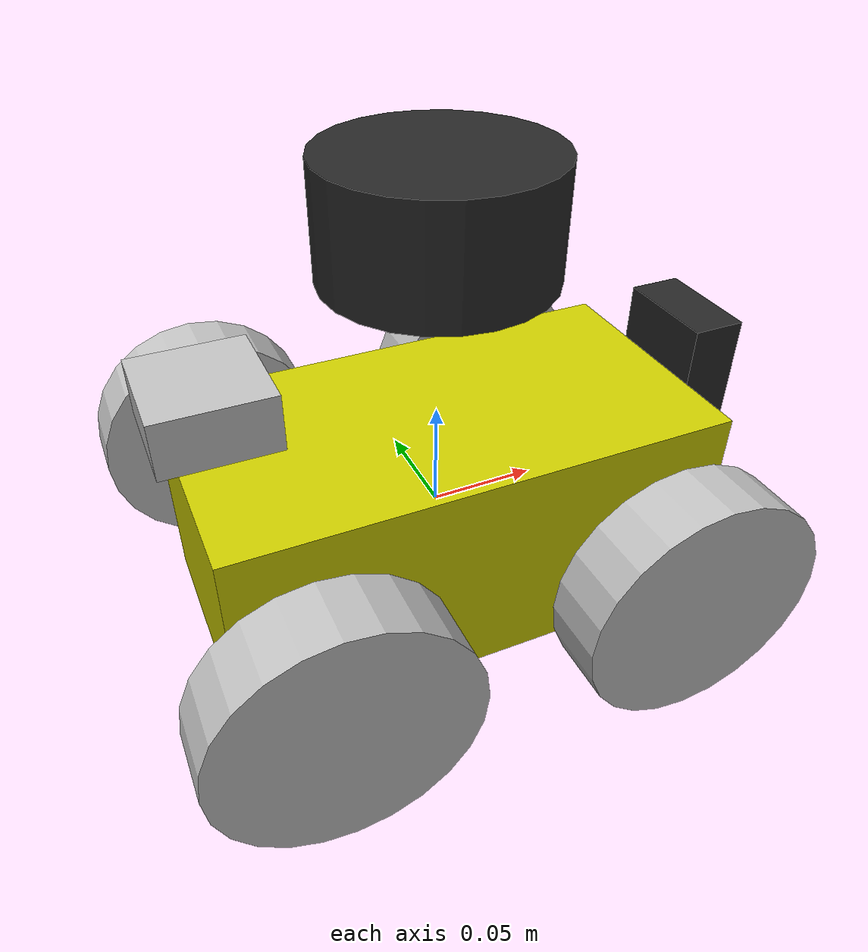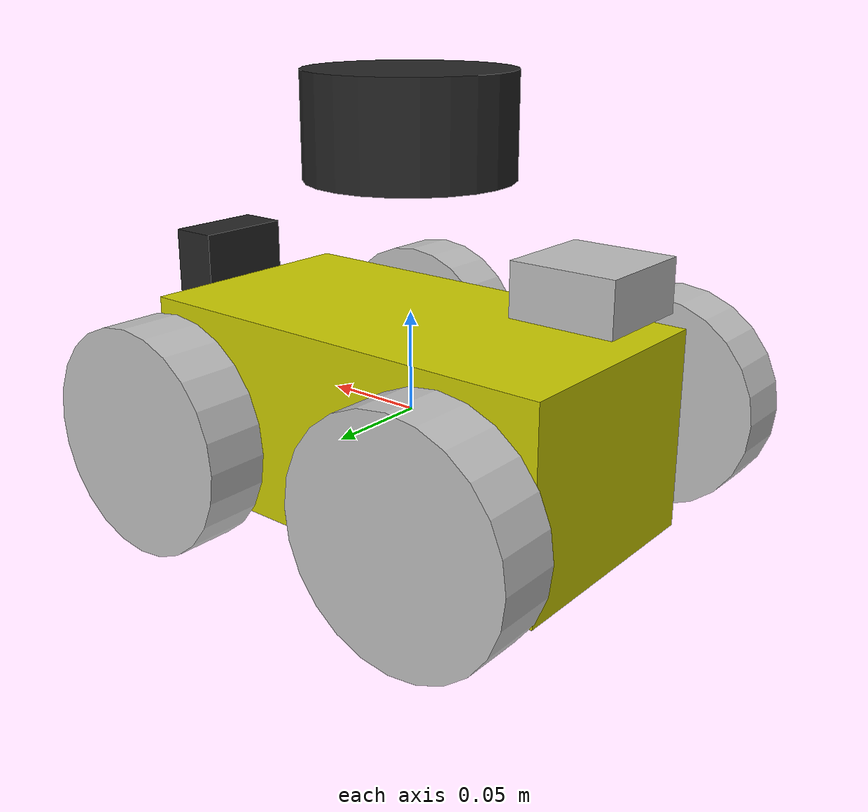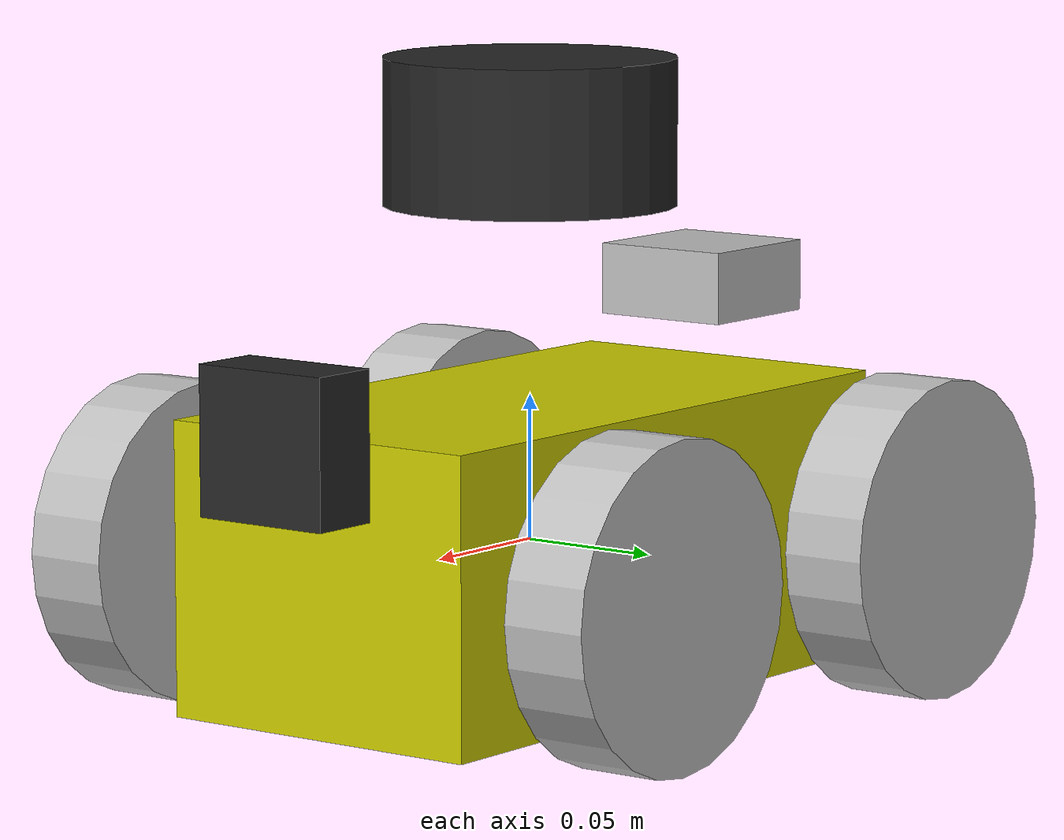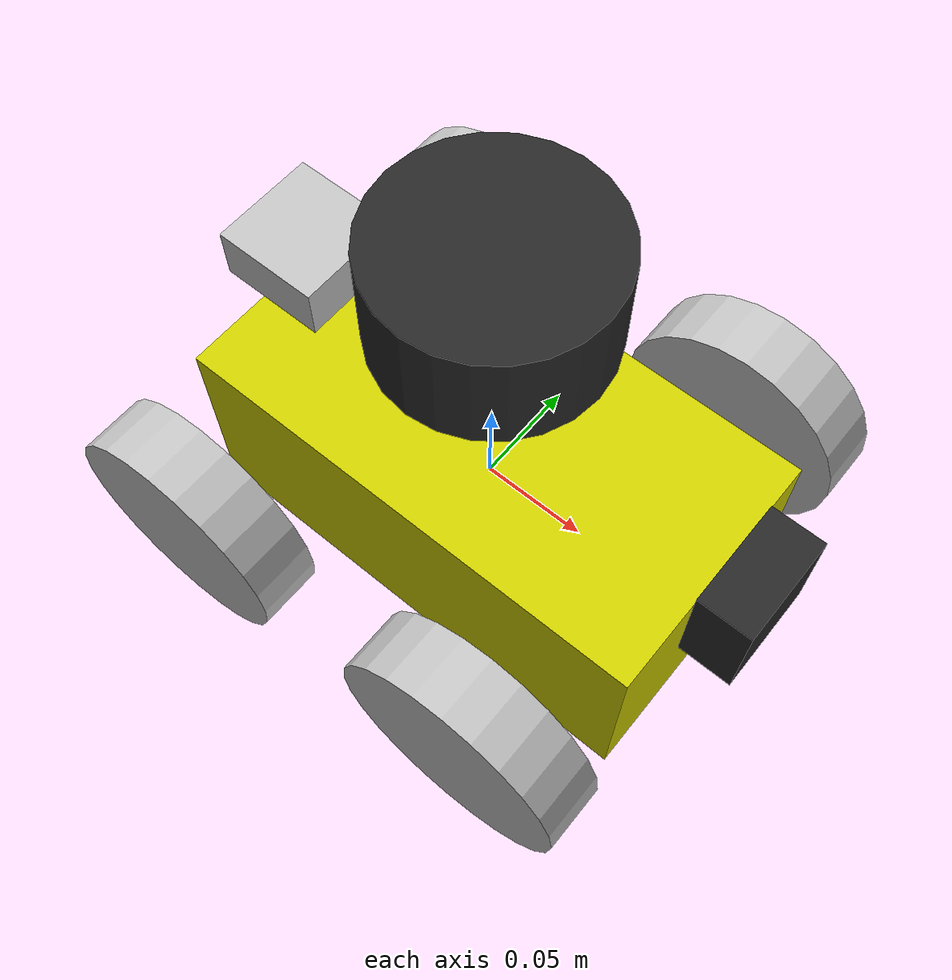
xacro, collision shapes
<?xml version="1.0" encoding="utf-8"?>
<robot name="rubot">

  <!-- Materials (RViz / URDF visuals) -->
  <material name="yellow">
    <color rgba="0.8 0.8 0.0 1.0"/>
  </material>
  <material name="black">
    <color rgba="0.15 0.15 0.15 1.0"/>
  </material>
  <material name="dark_grey">
    <color rgba="0.2 0.2 0.2 1.0"/>
  </material>
  <material name="light_grey">
    <color rgba="0.75 0.75 0.75 1.0"/>
  </material>

  <!-- base_footprint reference frame (no inertia needed) -->
  <link name="base_footprint"/>

  <!-- base_link -->
  <joint name="base_link_joint" type="fixed">
    <origin rpy="0 0 0" xyz="0 0 0"/>
    <parent link="base_footprint"/>
    <child link="base_link"/>
  </joint>

  <link name="base_link">
    <visual>
      <origin rpy="0 0 0" xyz="0 0 0"/>
      <geometry>
        <mesh filename="package://my_robot_description/meshes/rubot/base_link.stl"
              scale="0.001 0.001 0.001"/>
      </geometry>
      <material name="yellow"/>
    </visual>

    <collision>
      <origin xyz="0 0 0"/>
      <geometry>
        <box size="0.23 0.12 0.1"/>
      </geometry>
    </collision>

    <inertial>
      <origin rpy="0 0 0" xyz="0 0 0"/>
      <mass value="5"/>
      <inertia ixx="0.0104" ixy="0" ixz="0" iyy="0.0292" iyz="0" izz="0.0375"/>
    </inertial>
  </link>

  <!-- upper_left_wheel -->
  <joint name="upper_left_wheel_joint" type="continuous">
    <origin rpy="0 0 0" xyz="0.07 0.1 0"/>
    <parent link="base_link"/>
    <child link="upper_left_wheel"/>
    <axis xyz="0 1 0"/>
  </joint>

  <link name="upper_left_wheel">
    <visual>
      <origin rpy="0 0 0" xyz="0 0 0"/>
      <geometry>
        <mesh filename="package://my_robot_description/meshes/rubot/upper_left_wheel.stl"
              scale="0.001 0.001 0.001"/>
      </geometry>
      <material name="light_grey"/>
    </visual>

    <collision>
      <origin rpy="-1.57 0 0" xyz="0 0 0"/>
      <geometry>
        <cylinder length="0.03" radius="0.055"/>
      </geometry>
    </collision>

    <inertial>
      <mass value="0.2"/>
      <inertia ixx="0.000166" ixy="0" ixz="0" iyy="0.000303" iyz="0" izz="0.000166"/>
    </inertial>
  </link>

  <!-- lower_left_wheel -->
  <joint name="lower_left_wheel_joint" type="continuous">
    <origin rpy="0 0 0" xyz="-0.085 0.1 0"/>
    <parent link="base_link"/>
    <child link="lower_left_wheel"/>
    <axis xyz="0 1 0"/>
  </joint>

  <link name="lower_left_wheel">
    <visual>
      <origin rpy="0 0 0" xyz="0 0 0"/>
      <geometry>
        <mesh filename="package://my_robot_description/meshes/rubot/lower_left_wheel.stl"
              scale="0.001 0.001 0.001"/>
      </geometry>
      <material name="light_grey"/>
    </visual>

    <collision>
      <origin rpy="-1.57 0 0" xyz="0 0 0"/>
      <geometry>
        <cylinder length="0.03" radius="0.055"/>
      </geometry>
    </collision>

    <inertial>
      <mass value="0.2"/>
      <inertia ixx="0.000166" ixy="0" ixz="0" iyy="0.000303" iyz="0" izz="0.000166"/>
    </inertial>
  </link>

  <!-- upper_right_wheel -->
  <joint name="upper_right_wheel_joint" type="continuous">
    <origin rpy="0 0 3.14" xyz="0.07 -0.1 0"/>
    <parent link="base_link"/>
    <child link="upper_right_wheel"/>
    <axis xyz="0 -1 0"/>
  </joint>

  <link name="upper_right_wheel">
    <visual>
      <origin rpy="0 0 0" xyz="0 0 0"/>
      <geometry>
        <mesh filename="package://my_robot_description/meshes/rubot/upper_right_wheel.stl"
              scale="0.001 0.001 0.001"/>
      </geometry>
      <material name="light_grey"/>
    </visual>

    <collision>
      <origin rpy="-1.57 0 0" xyz="0 0 0"/>
      <geometry>
        <cylinder length="0.03" radius="0.055"/>
      </geometry>
    </collision>

    <inertial>
      <mass value="0.2"/>
      <inertia ixx="0.000166" ixy="0" ixz="0" iyy="0.000303" iyz="0" izz="0.000166"/>
    </inertial>
  </link>

  <!-- lower_right_wheel -->
  <joint name="lower_right_wheel_joint" type="continuous">
    <origin rpy="0 0 3.14" xyz="-0.085 -0.1 0"/>
    <parent link="base_link"/>
    <child link="lower_right_wheel"/>
    <axis xyz="0 -1 0"/>
  </joint>

  <link name="lower_right_wheel">
    <visual>
      <origin rpy="0 0 0" xyz="0 0 0"/>
      <geometry>
        <mesh filename="package://my_robot_description/meshes/rubot/lower_right_wheel.stl"
              scale="0.001 0.001 0.001"/>
      </geometry>
      <material name="light_grey"/>
    </visual>

    <collision>
      <origin rpy="-1.57 0 0" xyz="0 0 0"/>
      <geometry>
        <cylinder length="0.03" radius="0.055"/>
      </geometry>
    </collision>

    <inertial>
      <mass value="0.2"/>
      <inertia ixx="0.000166" ixy="0" ixz="0" iyy="0.000303" iyz="0" izz="0.000166"/>
    </inertial>
  </link>

  <!-- Camera link -->
  <joint name="joint_camera" type="fixed">
    <origin rpy="0 0 0" xyz="0.130 0.0 0.05"/>
    <parent link="base_link"/>
    <child link="camera"/>
    <axis xyz="0 1 0"/>
  </joint>

  <link name="camera">
    <visual>
      <origin rpy="0 1.57 0" xyz="0 0 0"/>
      <geometry>
        <box size="0.05 0.05 0.025"/>
      </geometry>
      <material name="black"/>
    </visual>

    <collision>
      <origin rpy="0 1.57 0" xyz="0 0 0"/>
      <geometry>
        <box size="0.05 0.05 0.025"/>
      </geometry>
    </collision>

    <inertial>
      <origin rpy="0 1.57 0" xyz="0 0 0"/>
      <mass value="0.01"/>
      <inertia ixx="1e-6" ixy="0" ixz="0" iyy="1e-6" iyz="0" izz="1e-6"/>
    </inertial>
  </link>

  <!-- LIDAR base_scan -->
  <link name="base_scan">
    <visual>
      <origin rpy="0 0 0" xyz="0 0 0"/>
      <geometry>
        <mesh filename="package://my_robot_description/meshes/rubot/Lidar.stl"
              scale="0.001 0.001 0.001"/>
      </geometry>
      <material name="black"/>
    </visual>

    <collision>
      <origin rpy="0 0 0" xyz="0 0 0"/>
      <geometry>
        <cylinder length="0.05" radius="0.05"/>
      </geometry>
    </collision>

    <inertial>
      <origin rpy="0 0 0" xyz="0 0 0"/>
      <mass value="0.05"/>
      <inertia ixx="0.001" ixy="0.0" ixz="0.0" iyy="0.001" iyz="0.0" izz="0.001"/>
    </inertial>
  </link>

  <joint name="scan_joint" type="fixed">
    <axis xyz="0 0 1"/>
    <origin rpy="0 0 0" xyz="0 0 0.14"/>
    <parent link="base_link"/>
    <child link="base_scan"/>
  </joint>

  <!-- Box part -->
  <joint name="joint_part" type="fixed">
    <origin rpy="0 0 0" xyz="-0.10 0.0 0.08"/>
    <parent link="base_link"/>
    <child link="part"/>
  </joint>

  <link name="part">
    <visual>
      <origin rpy="0 0 0" xyz="0 0 0"/>
      <geometry>
        <mesh filename="package://my_robot_description/meshes/rubot/number2.stl"
              scale="0.0008 0.0008 0.0008"/>
      </geometry>
      <material name="light_grey"/>
    </visual>

    <collision>
      <origin rpy="0 0 0" xyz="0 0 0"/>
      <geometry>
        <box size="0.05 0.05 0.025"/>
      </geometry>
    </collision>

    <inertial>
      <mass value="0.01"/>
      <inertia ixx="1e-6" ixy="0" ixz="0" iyy="1e-6" iyz="0" izz="1e-6"/>
    </inertial>
  </link>

</robot>
